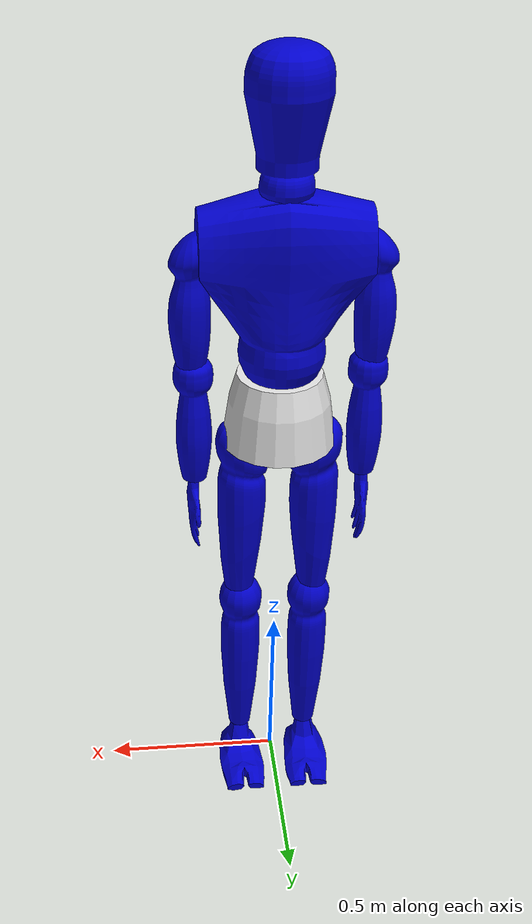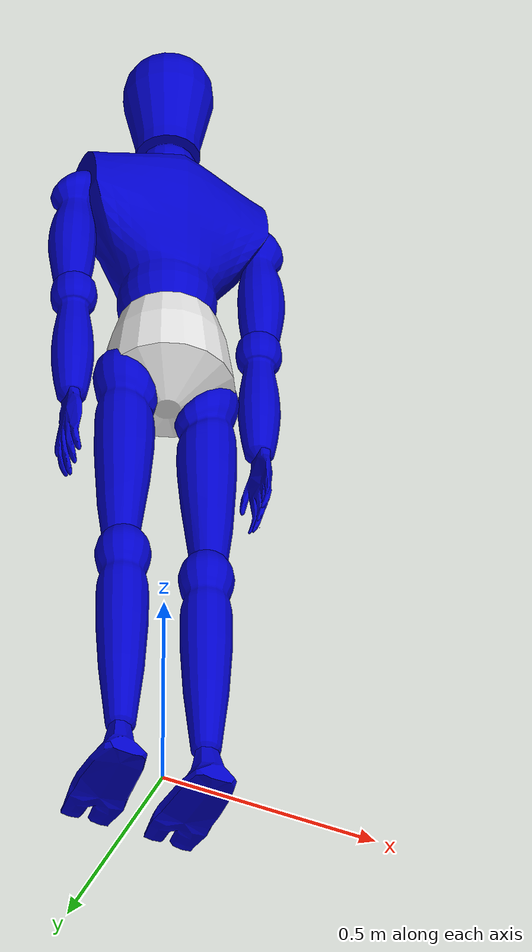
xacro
<?xml version="1.0"?>
<robot xmlns:sensor="http://playerstage.sourceforge.net/gazebo/xmlschema/#sensor"
       xmlns:controller="http://playerstage.sourceforge.net/gazebo/xmlschema/#controller"
       xmlns:interface="http://playerstage.sourceforge.net/gazebo/xmlschema/#interface"
       xmlns:xacro="http://playerstage.sourceforge.net/gazebo/xmlschema/#interface"
       name="human_gait2" >

  <material name="Blue">
    <color rgba="0.0 0.0 0.8 1.0"/>
  </material>
  <material name="Green">
    <color rgba="0.0 0.8 0.0 1.0"/>
  </material>
  <material name="Grey">
    <color rgba="0.7 0.7 0.7 1.0"/>
  </material>
  <material name="Grey2">
    <color rgba="0.9 0.9 0.9 1.0"/>
  </material>
  <material name="Red">
    <color rgba="0.8 0.0 0.0 1.0"/>
  </material>
  <material name="White">
    <color rgba="1.0 1.0 1.0 1.0"/>
  </material>
  <material name="Black">
    <color rgba="0.1 0.1 0.1 1.0"/>
  </material>
  <material name="LightGrey">
    <color rgba="0.6 0.6 0.6 1.0"/>
  </material>

  <link name="root_link"/>
  <link name="base_prismatic_dummy1">
    <visual>
      <origin rpy="0 0 0" xyz="0 0 0"/>
      <geometry>
        <box size="0.001 0.001 0.001"/>
      </geometry>
      <material name="Blue"/>
    </visual>
  </link>
  <link name="base_prismatic_dummy2">
    <visual>
      <origin rpy="0 0 0" xyz="0 0 0"/>
      <geometry>
        <box size="0.001 0.001 0.001"/>
      </geometry>
      <material name="Blue"/>
    </visual>
  </link>
  <link name="base_prismatic_dummy3">
    <visual>
      <origin rpy="0 0 0" xyz="0 0 0"/>
      <geometry>
        <box size="0.001 0.001 0.001"/>
      </geometry>
      <material name="Blue"/>
    </visual>
  </link>
  <joint name="base_prismatic_joint_x" type="prismatic">
    <axis xyz="1 0 0"/>
    <limit effort="10000" lower="-25.0" upper="25.0" velocity="0.6"/>
    <safety_controller k_position="100" k_velocity="2000000" soft_lower_limit="-24.9" soft_upper_limit="24.9"/>
    <calibration falling="0.00536"/>
    <dynamics damping="20000.0"/>
    <origin rpy="0 0 0" xyz="0 0 1.12"/>
    <parent link="root_link"/>
    <child link="base_prismatic_dummy1"/>
  </joint>
  <joint name="base_prismatic_joint_y" type="prismatic">
    <axis xyz="0 1 0"/>
    <limit effort="10000" lower="-25.0" upper="25.0" velocity="0.6"/>
    <safety_controller k_position="100" k_velocity="2000000" soft_lower_limit="-24.9" soft_upper_limit="24.9"/>
    <calibration falling="0.00536"/>
    <dynamics damping="20000.0"/>
    <origin rpy="0 0 0" xyz="0 0 0"/>
    <parent link="base_prismatic_dummy1"/>
    <child link="base_prismatic_dummy2"/>
  </joint>
  <joint name="base_prismatic_joint_z" type="prismatic">
    <axis xyz="0 0 1"/>
    <limit effort="10000" lower="-0.5" upper="0.6" velocity="0.6"/>
    <safety_controller k_position="100" k_velocity="2000000" soft_lower_limit="-0.5" soft_upper_limit="0.6"/>
    <calibration falling="0.00536"/>
    <dynamics damping="20000.0"/>
    <origin rpy="0 0 0" xyz="0 0 0"/>
    <parent link="base_prismatic_dummy2"/>
    <child link="base_prismatic_dummy3"/>
  </joint>
  <joint name="base_revolute_joint_z" type="continuous">
    <axis xyz="0 0 1"/>
    <origin rpy="0 0 0" xyz="0 0 0"/>
    <parent link="base_prismatic_dummy3"/>
    <child link="pelvis_link"/>
  </joint>

  <link name="pelvis_link">
    <visual>
      <origin rpy="0 0 0" xyz="0 0 0"/>
      <geometry>
        <mesh filename="package://human_description/meshes/pelvis.dae"/>
      </geometry>
      <material name="Grey2"/>
    </visual>
    <collision>
      <origin rpy="0 0 0" xyz="0 0 0"/>
      <geometry>
        <mesh filename="package://human_description/meshes/pelvis.dae"/>
      </geometry>
    </collision>
    <inertial>
      <mass value="24.9873014159"/>
      <inertia ixx="0.219399825" ixy="0.000000009184695" ixz="0.000000062599005" iyy="0.21939959375" iyz="-0.000000006475555" izz="0.22992248625"/>
      <origin xyz="0.00297477 -0.00000001 0.0983925"/>
    </inertial>
  </link>

  <joint name="torso_z_joint" type="revolute">
    <axis xyz="0 0 1"/>
    <limit effort="15" lower="-0.7" upper="0.7" velocity="5"/>
    <origin rpy="0 0 0" xyz="0 0 0.26"/>
    <parent link="pelvis_link"/>
    <child link="torso_z_link"/>
  </joint>
  <joint name="torso_y_joint" type="revolute">
    <axis xyz="0 1 0"/>
    <limit effort="15" lower="-0.3" upper="0.3" velocity="5"/>
    <origin rpy="0 0 0" xyz="0 0 0"/>
    <parent link="torso_z_link"/>
    <child link="torso_y_link"/>
  </joint>
  <joint name="torso_x_joint" type="revolute">
    <axis xyz="1 0 0"/>
    <limit effort="15" lower="-1.0" upper="0" velocity="5"/>
    <origin rpy="0 0 0" xyz="0 0 0"/>
    <parent link="torso_y_link"/>
    <child link="torso_x_link"/>
  </joint>

  <link name="torso_z_link"/>
  <link name="torso_y_link"/>
  <link name="torso_x_link">
    <visual>
      <origin rpy="0 0 0" xyz="0 0 0"/>
      <geometry>
        <mesh filename="package://human_description/meshes/torso.dae"/>
      </geometry>
      <material name="Blue"/>
    </visual>
    <collision>
      <origin rpy="0 0 0" xyz="0 0 0"/>
      <geometry>
        <mesh filename="package://human_description/meshes/torso.dae"/>
      </geometry>
    </collision>
    <inertial>
      <mass value="54.1902903318"/>
      <inertia ixx="1.0895931125" ixy="0.000001152997515" ixz="-0.000000460619845" iyy="1.4490895525" iyz="0.000000968452985" izz="0.679463005"/>
      <origin xyz="0.00000036 -0.00000025 0.22608234"/>
    </inertial>
  </link>

  <joint name="head_z_joint" type="revolute">
    <axis xyz="0 0 1"/>
    <limit effort="15" lower="-1.2" upper="1.2" velocity="5"/>
    <origin rpy="0 0 0" xyz="0 0 0.45"/>
    <parent link="torso_x_link"/>
    <child link="head_z_link"/>
  </joint>
  <joint name="head_y_joint" type="revolute">
    <axis xyz="0 1 0"/>
    <limit effort="15" lower="-0.8" upper="0.8" velocity="5"/>
    <origin rpy="0 0 0" xyz="0 0 0"/>
    <parent link="head_z_link"/>
    <child link="head_y_link"/>
  </joint>
  <joint name="head_x_joint" type="revolute">
    <axis xyz="1 0 0"/>
    <limit effort="15" lower="-1.57" upper="0.3" velocity="5"/>
    <origin rpy="0 0 0" xyz="0 0 0"/>
    <parent link="head_y_link"/>
    <child link="head_x_link"/>
  </joint>

  <link name="head_z_link"/>
  <link name="head_y_link"/>
  <link name="head_x_link">
    <visual>
      <origin rpy="0 0 0" xyz="0 0 0"/>
      <geometry>
        <mesh filename="package://human_description/meshes/head.dae"/>
      </geometry>
      <material name="Blue"/>
    </visual>
    <collision>
      <origin rpy="0 0 0" xyz="0 0 0"/>
      <geometry>
        <mesh filename="package://human_description/meshes/head.dae"/>
      </geometry>
    </collision>
    <inertial>
      <mass value="16.0164526852"/>
      <inertia ixx="0.194835825625" ixy="-0.00000000913641" ixz="0.00000000531468" iyy="0.194835733125" iyz="-0.000000020301345" izz="0.06426014890625"/>
      <origin xyz="-0.00113475 0.00000001 0.18566523"/>
    </inertial>
  </link>

  <joint name="head_endeffector_joint" type="revolute">
    <axis xyz="0 0 1"/>
    <limit effort="15" lower="-0.001" upper="0.001" velocity="5"/>
    <origin rpy="0 0 0" xyz="0 0 0.3"/>
    <parent link="head_x_link"/>
    <child link="head_endeffector_link"/>
  </joint>

  <link name="head_endeffector_link">
    <visual>
      <origin rpy="0 0 0" xyz="0 0 0"/>
      <geometry>
        <box size="0.001 0.001 0.001"/>
      </geometry>
      <material name="Blue"/>
    </visual>
    <collision>
      <origin rpy="0 0 0" xyz="0 0 0"/>
      <geometry>
        <box size="0.001 0.001 0.001"/>
      </geometry>
    </collision>
  </link>

  <joint name="upper_left_leg_z_joint" type="revolute">
    <axis xyz="0 0 1"/>
    <limit effort="15" lower="-0.1" upper="1.57" velocity="5"/>
    <origin rpy="0 0 0" xyz="-0.1 0 0"/>
    <parent link="pelvis_link"/>
    <child link="upper_left_leg_z_link"/>
  </joint>
  <joint name="upper_left_leg_y_joint" type="revolute">
    <axis xyz="0 1 0"/>
    <limit effort="15" lower="-0.1" upper="1.57" velocity="5"/>
    <origin rpy="0 0 0" xyz="0 0 0"/>
    <parent link="upper_left_leg_z_link"/>
    <child link="upper_left_leg_y_link"/>
  </joint>
  <joint name="upper_left_leg_x_joint" type="revolute">
    <axis xyz="1 0 0"/>
    <limit effort="15" lower="-1.2" upper="1.57" velocity="5"/>
    <origin rpy="0 0 0" xyz="0 0 0"/>
    <parent link="upper_left_leg_y_link"/>
    <child link="upper_left_leg_x_link"/>
  </joint>

  <link name="upper_left_leg_z_link"/>
  <link name="upper_left_leg_y_link"/>
  <link name="upper_left_leg_x_link">
    <visual>
      <origin rpy="0 0 0" xyz="0 0 0"/>
      <geometry>
        <mesh filename="package://human_description/meshes/upperLeftLeg.dae"/>
      </geometry>
      <material name="Blue"/>
    </visual>
    <collision>
      <origin rpy="0 0 0" xyz="0 0 0"/>
      <geometry>
        <mesh filename="package://human_description/meshes/upperLeftLeg.dae"/>
      </geometry>
    </collision>
    <inertial>
      <mass value="11.28066677275"/>
      <inertia ixx="0.258606759375" ixy="0.000002463301455" ixz="0.00032211891975" iyy="0.258311314375" iyz="-0.000065609605275" izz="0.021073428046875"/>
      <origin xyz="-0.00364974 -0.00003172 -0.19576731"/>
    </inertial>
  </link>

  <joint name="lower_left_leg_joint" type="revolute">
    <axis xyz="1 0 0"/>
    <limit effort="15" lower="-2.4" upper="0" velocity="5"/>
    <origin rpy="0 0 0" xyz="0 0 -0.5"/>
    <parent link="upper_left_leg_x_link"/>
    <child link="lower_left_leg_link"/>
  </joint>

  <link name="lower_left_leg_link">
    <visual>
      <origin rpy="0 0 0" xyz="0 0 0"/>
      <geometry>
        <mesh filename="package://human_description/meshes/lowerLeftLeg.dae"/>
      </geometry>
      <material name="Blue"/>
    </visual>
    <collision>
      <origin rpy="0 0 0" xyz="0 0 0"/>
      <geometry>
        <mesh filename="package://human_description/meshes/lowerLeftLeg.dae"/>
      </geometry>
    </collision>
    <inertial>
      <mass value="8.394054321"/>
      <inertia ixx="0.1879741409375" ixy="0.000000001719205" ixz="-0.00000000509231" iyy="0.1879741525" iyz="-0.00000001780773" izz="0.01166299402353"/>
      <origin xyz="0.00020124 -0.00029422 -0.20195734"/>
    </inertial>
  </link>

  <joint name="left_foot_x_joint" type="revolute">
    <axis xyz="1 0 0"/>
    <limit effort="15" lower="-1.57" upper="1.57" velocity="5"/>
    <origin rpy="0 0 0" xyz="0 0 -0.52"/>
    <parent link="lower_left_leg_link"/>
    <child link="left_foot_x_link"/>
  </joint>
  <joint name="left_foot_y_joint" type="revolute">
    <axis xyz="0 1 0"/>
    <limit effort="15" lower="-1.57" upper="1.57" velocity="5"/>
    <origin rpy="0 0 0" xyz="0 0 0"/>
    <parent link="left_foot_x_link"/>
    <child link="left_foot_y_link"/>
  </joint>
  <joint name="left_foot_z_joint" type="revolute">
    <axis xyz="0 0 1"/>
    <limit effort="15" lower="0" upper="0" velocity="5"/>
    <origin rpy="0 0 0" xyz="0 0 0"/>
    <parent link="left_foot_y_link"/>
    <child link="left_foot_z_link"/>
  </joint>

  <link name="left_foot_x_link"/>
  <link name="left_foot_y_link"/>
  <link name="left_foot_z_link">
    <visual>
      <origin rpy="0 0 0" xyz="0 0 0"/>
      <geometry>
        <mesh filename="package://human_description/meshes/leftFoot.dae"/>
      </geometry>
      <material name="Blue"/>
    </visual>
    <collision>
      <origin rpy="0 0 0" xyz="0 0 0"/>
      <geometry>
        <mesh filename="package://human_description/meshes/leftFoot.dae"/>
      </geometry>
    </collision>
    <inertial>
      <mass value="2.24629475115"/>
      <inertia ixx="0.00997119431636" ixy="-0.00032381616821" ixz="0.00003556416949" iyy="0.00325251065432" iyz="0.00137797584221" izz="0.01040399675772"/>
      <origin xyz="-0.00160579 0.04884521 -0.0783361"/>
    </inertial>
  </link>

  <joint name="left_foot_endeffector_joint" type="revolute">
    <axis xyz="0 0 1"/>
    <limit effort="15" lower="0" upper="0" velocity="5"/>
    <origin rpy="0 0 0" xyz="0 0 -0.1"/>
    <parent link="left_foot_z_link"/>
    <child link="left_foot_endeffector_link"/>
  </joint>

  <link name="left_foot_endeffector_link">
    <visual>
      <origin rpy="0 0 0" xyz="0 0 0"/>
      <geometry>
        <box size="0.001 0.001 0.001"/>
      </geometry>
      <material name="Blue"/>
    </visual>
  </link>

  <joint name="upper_right_leg_z_joint" type="revolute">
    <axis xyz="0 0 1"/>
    <limit effort="15" lower="-1.57" upper="0.1" velocity="5"/>
    <origin rpy="0 0 0" xyz="0.1 0 0"/>
    <parent link="pelvis_link"/>
    <child link="upper_right_leg_z_link"/>
  </joint>
  <joint name="upper_right_leg_y_joint" type="revolute">
    <axis xyz="0 1 0"/>
    <limit effort="15" lower="-1.57" upper="0.1" velocity="5"/>
    <origin rpy="0 0 0" xyz="0 0 0"/>
    <parent link="upper_right_leg_z_link"/>
    <child link="upper_right_leg_y_link"/>
  </joint>
  <joint name="upper_right_leg_x_joint" type="revolute">
    <axis xyz="1 0 0"/>
    <limit effort="15" lower="-1.2" upper="1.57" velocity="5"/>
    <origin rpy="0 0 0" xyz="0 0 0"/>
    <parent link="upper_right_leg_y_link"/>
    <child link="upper_right_leg_x_link"/>
  </joint>

  <link name="upper_right_leg_z_link"/>
  <link name="upper_right_leg_y_link"/>
  <link name="upper_right_leg_x_link">
    <visual>
      <origin rpy="0 0 0" xyz="0 0 0"/>
      <geometry>
        <mesh filename="package://human_description/meshes/upperRightLeg.dae"/>
      </geometry>
      <material name="Blue"/>
    </visual>
    <collision>
      <origin rpy="0 0 0" xyz="0 0 0"/>
      <geometry>
        <mesh filename="package://human_description/meshes/upperRightLeg.dae"/>
      </geometry>
    </collision>
    <inertial>
      <mass value="11.28066677275"/>
      <inertia ixx="0.258606759375" ixy="-0.000002463410605" ixz="-0.000322118806715" iyy="0.258311360625" iyz="-0.000065609865015" izz="0.021073428046875"/>
      <origin xyz="0.00364974 -0.00003172 -0.19576731"/>
    </inertial>
  </link>

  <joint name="lower_right_leg_joint" type="revolute">
    <axis xyz="1 0 0"/>
    <limit effort="15" lower="-2.4" upper="0" velocity="5"/>
    <origin rpy="0 0 0" xyz="0 0 -0.5"/>
    <parent link="upper_right_leg_x_link"/>
    <child link="lower_right_leg_link"/>
  </joint>

  <link name="lower_right_leg_link">
    <visual>
      <origin rpy="0 0 0" xyz="0 0 0"/>
      <geometry>
        <mesh filename="package://human_description/meshes/lowerRightLeg.dae"/>
      </geometry>
      <material name="Blue"/>
    </visual>
    <collision>
      <origin rpy="0 0 0" xyz="0 0 0"/>
      <geometry>
        <mesh filename="package://human_description/meshes/lowerRightLeg.dae"/>
      </geometry>
    </collision>
    <inertial>
      <mass value="8.394054321"/>
      <inertia ixx="0.1879741409375" ixy="0.000000001719205" ixz="-0.00000000509231" iyy="0.1879741525" iyz="-0.00000001780773" izz="0.01166299402353"/>
      <origin xyz="0.00020124 -0.00029422 -0.20195734"/>
    </inertial>
  </link>

  <joint name="right_foot_x_joint" type="revolute">
    <axis xyz="1 0 0"/>
    <limit effort="15" lower="-1.57" upper="1.57" velocity="5"/>
    <origin rpy="0 0 0" xyz="0 0 -0.52"/>
    <parent link="lower_right_leg_link"/>
    <child link="right_foot_x_link"/>
  </joint>
  <joint name="right_foot_y_joint" type="revolute">
    <axis xyz="0 1 0"/>
    <limit effort="15" lower="-1.57" upper="1.57" velocity="5"/>
    <origin rpy="0 0 0" xyz="0 0 0"/>
    <parent link="right_foot_x_link"/>
    <child link="right_foot_y_link"/>
  </joint>
  <joint name="right_foot_z_joint" type="revolute">
    <axis xyz="0 0 1"/>
    <limit effort="15" lower="0" upper="0" velocity="5"/>
    <origin rpy="0 0 0" xyz="0 0 0"/>
    <parent link="right_foot_y_link"/>
    <child link="right_foot_z_link"/>
  </joint>

  <link name="right_foot_x_link"/>
  <link name="right_foot_y_link"/>
  <link name="right_foot_z_link">
    <visual>
      <origin rpy="0 0 0" xyz="0 0 0"/>
      <geometry>
        <mesh filename="package://human_description/meshes/rightFoot.dae"/>
      </geometry>
      <material name="Blue"/>
    </visual>
    <collision>
      <origin rpy="0 0 0" xyz="0 0 0"/>
      <geometry>
        <mesh filename="package://human_description/meshes/rightFoot.dae"/>
      </geometry>
    </collision>
    <inertial>
      <mass value="2.24629475115"/>
      <inertia ixx="0.00997119287114" ixy="0.00032381614564" ixz="-0.0000355639042" iyy="0.003252511015625" iyz="0.00137797638426" izz="0.01040399675772"/>
      <origin xyz="0.00160579 0.04884521 -0.0783361"/>
    </inertial>
  </link>

  <joint name="right_foot_endeffector_joint" type="revolute">
    <axis xyz="0 0 1"/>
    <limit effort="15" lower="0" upper="0" velocity="5"/>
    <origin rpy="0 0 0" xyz="0 0 -0.1"/>
    <parent link="right_foot_z_link"/>
    <child link="right_foot_endeffector_link"/>
  </joint>

  <link name="right_foot_endeffector_link">
    <visual>
      <origin rpy="0 0 0" xyz="0 0 0"/>
      <geometry>
        <box size="0.001 0.001 0.001"/>
      </geometry>
      <material name="Blue"/>
    </visual>
  </link>

  <joint name="upper_left_arm_z_joint" type="revolute">
    <axis xyz="0 0 1"/>
    <limit effort="15" lower="-0.5" upper="0.5" velocity="5"/>
    <origin rpy="0 0 0" xyz="-0.23 0 0.33"/>
    <parent link="torso_x_link"/>
    <child link="upper_left_arm_z_link"/>
  </joint>
  <joint name="upper_left_arm_y_joint" type="revolute">
    <axis xyz="0 1 0"/>
    <limit effort="15" lower="0.0" upper="3.14" velocity="5"/>
    <origin rpy="0 0 0" xyz="0 0 0"/>
    <parent link="upper_left_arm_z_link"/>
    <child link="upper_left_arm_y_link"/>
  </joint>
  <joint name="upper_left_arm_x_joint" type="revolute">
    <axis xyz="1 0 0"/>
    <limit effort="15" lower="-1.0" upper="3.14" velocity="5"/>
    <origin rpy="0 0 0" xyz="0 0 0"/>
    <parent link="upper_left_arm_y_link"/>
    <child link="upper_left_arm_x_link"/>
  </joint>

  <link name="upper_left_arm_z_link"/>
  <link name="upper_left_arm_y_link"/>
  <link name="upper_left_arm_x_link">
    <visual>
      <origin rpy="0 0 0" xyz="0 0 0"/>
      <geometry>
        <mesh filename="package://human_description/meshes/upperLeftArm.dae"/>
      </geometry>
      <material name="Blue"/>
    </visual>
    <collision>
      <origin rpy="0 0 0" xyz="0 0 0"/>
      <geometry>
        <mesh filename="package://human_description/meshes/upperLeftArm.dae"/>
      </geometry>
    </collision>
    <inertial>
      <mass value="5.0428574576"/>
      <inertia ixx="0.05868383265625" ixy="-0.0000000925777" ixz="-0.00160419461921" iyy="0.05870381265625" iyz="-0.000002301658445" izz="0.006071859706985"/>
      <origin xyz="-0.00338773 -0.00000063 -0.17172602"/>
    </inertial>
  </link>

  <joint name="lower_left_arm_joint" type="revolute">
    <axis xyz="1 0 0"/>
    <limit effort="15" lower="0" upper="3.14" velocity="5"/>
    <origin rpy="0 0 0" xyz="0 0 -0.35"/>
    <parent link="upper_left_arm_x_link"/>
    <child link="lower_left_arm_link"/>
  </joint>

  <link name="lower_left_arm_link">
    <visual>
      <origin rpy="0 0 0" xyz="0 0 0"/>
      <geometry>
        <mesh filename="package://human_description/meshes/lowerLeftArm.dae"/>
      </geometry>
      <material name="Blue"/>
    </visual>
    <collision>
      <origin rpy="0 0 0" xyz="0 0 0"/>
      <geometry>
        <mesh filename="package://human_description/meshes/lowerLeftArm.dae"/>
      </geometry>
    </collision>
    <inertial>
      <mass value="4.1174112191"/>
      <inertia ixx="0.046870596953125" ixy="-0.000000000013135" ixz="0.00000000291116" iyy="0.0468705940625" iyz="-0.00000000721685" izz="0.00412573450193"/>
      <origin xyz="0.00022047 0.00000002 -0.14231966"/>
    </inertial>
  </link>

  <joint name="left_hand_z_joint" type="revolute">
    <axis xyz="0 0 1"/>
    <limit effort="15" lower="-1.0" upper="1.0" velocity="5"/>
    <origin rpy="0 0 0" xyz="0 0 -0.35"/>
    <parent link="lower_left_arm_link"/>
    <child link="left_hand_z_link"/>
  </joint>
  <joint name="left_hand_y_joint" type="revolute">
    <axis xyz="0 1 0"/>
    <limit effort="15" lower="-1.3" upper="1.5" velocity="5"/>
    <origin rpy="0 0 0" xyz="0 0 0"/>
    <parent link="left_hand_z_link"/>
    <child link="left_hand_y_link"/>
  </joint>
  <joint name="left_hand_x_joint" type="revolute">
    <axis xyz="1 0 0"/>
    <limit effort="15" lower="-0.5" upper="1.4" velocity="5"/>
    <origin rpy="0 0 0" xyz="0 0 0"/>
    <parent link="left_hand_y_link"/>
    <child link="left_hand_x_link"/>
  </joint>

  <link name="left_hand_z_link"/>
  <link name="left_hand_y_link"/>
  <link name="left_hand_x_link">
    <visual>
      <origin rpy="0 0 0" xyz="0 0 0"/>
      <geometry>
        <mesh filename="package://human_description/meshes/leftHand.dae"/>
      </geometry>
      <material name="Blue"/>
    </visual>
    <collision>
      <origin rpy="0 0 0" xyz="0 0 0"/>
      <geometry>
        <mesh filename="package://human_description/meshes/leftHand.dae"/>
      </geometry>
    </collision>
    <inertial>
      <mass value="0.5669499677"/>
      <inertia ixx="0.00201160057137" ixy="-0.000016142435665" ixz="-0.00000510135428" iyy="0.00161538206057" iyz="0.00004737239241" izz="0.00044905660648"/>
      <origin xyz="-0.00417106 0.0042704 -0.05959476"/>
    </inertial>
  </link>

  <joint name="left_hand_endeffector_joint" type="revolute">
    <axis xyz="0 0 1"/>
    <limit effort="15" lower="-0.001" upper="0.001" velocity="5"/>
    <origin rpy="0 0 0" xyz="0 0 -0.2"/>
    <parent link="left_hand_x_link"/>
    <child link="left_hand_endeffector_link"/>
  </joint>

  <link name="left_hand_endeffector_link">
    <visual>
      <origin rpy="0 0 0" xyz="0 0 0"/>
      <geometry>
        <box size="0.001 0.001 0.001"/>
      </geometry>
      <material name="Blue"/>
    </visual>
    <collision>
      <origin rpy="0 0 0" xyz="0 0 0"/>
      <geometry>
        <box size="0.001 0.001 0.001"/>
      </geometry>
    </collision>
  </link>

  <joint name="upper_right_arm_z_joint" type="revolute">
    <axis xyz="0 0 1"/>
    <limit effort="15" lower="-0.5" upper="0.5" velocity="5"/>
    <origin rpy="0 0 0" xyz="0.23 0 0.33"/>
    <parent link="torso_x_link"/>
    <child link="upper_right_arm_z_link"/>
  </joint>
  <joint name="upper_right_arm_y_joint" type="revolute">
    <axis xyz="0 1 0"/>
    <limit effort="15" lower="-3.14" upper="0.0" velocity="5"/>
    <origin rpy="0 0 0" xyz="0 0 0"/>
    <parent link="upper_right_arm_z_link"/>
    <child link="upper_right_arm_y_link"/>
  </joint>
  <joint name="upper_right_arm_x_joint" type="revolute">
    <axis xyz="1 0 0"/>
    <limit effort="15" lower="-1.0" upper="3.14" velocity="5"/>
    <origin rpy="0 0 0" xyz="0 0 0"/>
    <parent link="upper_right_arm_y_link"/>
    <child link="upper_right_arm_x_link"/>
  </joint>

  <link name="upper_right_arm_z_link"/>
  <link name="upper_right_arm_y_link"/>
  <link name="upper_right_arm_x_link">
    <visual>
      <origin rpy="0 0 0" xyz="0 0 0"/>
      <geometry>
        <mesh filename="package://human_description/meshes/upperRightArm.dae"/>
      </geometry>
      <material name="Blue"/>
    </visual>
    <collision>
      <origin rpy="0 0 0" xyz="0 0 0"/>
      <geometry>
        <mesh filename="package://human_description/meshes/upperRightArm.dae"/>
      </geometry>
    </collision>
    <inertial>
      <mass value="5.0428574576"/>
      <inertia ixx="0.05868383265625" ixy="0.00000009260175" ixz="0.00160419479977" iyy="0.05870381265625" iyz="-0.000002301500825" izz="0.006071859706985"/>
      <origin xyz="0.00338773 -0.00000063 -0.17172602"/>
    </inertial>
  </link>

  <joint name="lower_right_arm_joint" type="revolute">
    <axis xyz="1 0 0"/>
    <limit effort="15" lower="0" upper="3.14" velocity="5"/>
    <origin rpy="0 0 0" xyz="0 0 -0.35"/>
    <parent link="upper_right_arm_x_link"/>
    <child link="lower_right_arm_link"/>
  </joint>

  <link name="lower_right_arm_link">
    <visual>
      <origin rpy="0 0 0" xyz="0 0 0"/>
      <geometry>
        <mesh filename="package://human_description/meshes/lowerRightArm.dae"/>
      </geometry>
      <material name="Blue"/>
    </visual>
    <collision>
      <origin rpy="0 0 0" xyz="0 0 0"/>
      <geometry>
        <mesh filename="package://human_description/meshes/lowerRightArm.dae"/>
      </geometry>
    </collision>
    <inertial>
      <mass value="4.1174112191"/>
      <inertia ixx="0.046870596953125" ixy="-0.000000000013135" ixz="0.00000000291116" iyy="0.0468705940625" iyz="-0.00000000721685" izz="0.00412573450193"/>
      <origin xyz="0.00022047 0.00000002 -0.14231966"/>
    </inertial>
  </link>

  <joint name="right_hand_z_joint" type="revolute">
    <axis xyz="0 0 1"/>
    <limit effort="15" lower="-1.0" upper="1.0" velocity="5"/>
    <origin rpy="0 0 0" xyz="0 0 -0.35"/>
    <parent link="lower_right_arm_link"/>
    <child link="right_hand_z_link"/>
  </joint>
  <joint name="right_hand_y_joint" type="revolute">
    <axis xyz="0 1 0"/>
    <limit effort="15" lower="-1.5" upper="1.3" velocity="5"/>
    <origin rpy="0 0 0" xyz="0 0 0"/>
    <parent link="right_hand_z_link"/>
    <child link="right_hand_y_link"/>
  </joint>
  <joint name="right_hand_x_joint" type="revolute">
    <axis xyz="1 0 0"/>
    <limit effort="15" lower="-0.5" upper="1.4" velocity="5"/>
    <origin rpy="0 0 0" xyz="0 0 0"/>
    <parent link="right_hand_y_link"/>
    <child link="right_hand_x_link"/>
  </joint>

  <link name="right_hand_z_link"/>
  <link name="right_hand_y_link"/>
  <link name="right_hand_x_link">
    <visual>
      <origin rpy="0 0 0" xyz="0 0 0"/>
      <geometry>
        <mesh filename="package://human_description/meshes/rightHand.dae"/>
      </geometry>
      <material name="Blue"/>
    </visual>
    <collision>
      <origin rpy="0 0 0" xyz="0 0 0"/>
      <geometry>
        <mesh filename="package://human_description/meshes/rightHand.dae"/>
      </geometry>
    </collision>
    <inertial>
      <mass value="0.5669499677"/>
      <inertia ixx="0.00201160057137" ixy="0.000016142435665" ixz="0.00000510133208" iyy="0.00161538206057" iyz="0.00004737239241" izz="0.00044905660648"/>
      <origin xyz="0.00417106 0.0042704 -0.05959476"/>
    </inertial>
  </link>

  <joint name="right_hand_endeffector_joint" type="revolute">
    <axis xyz="0 0 1"/>
    <limit effort="15" lower="-0.001" upper="0.001" velocity="5"/>
    <origin rpy="0 0 0" xyz="0 0 -0.2"/>
    <parent link="right_hand_x_link"/>
    <child link="right_hand_endeffector_link"/>
  </joint>

  <link name="right_hand_endeffector_link">
    <visual>
      <origin rpy="0 0 0" xyz="0 0 0"/>
      <geometry>
        <box size="0.001 0.001 0.001"/>
      </geometry>
      <material name="Blue"/>
    </visual>
    <collision>
      <origin rpy="0 0 0" xyz="0 0 0"/>
      <geometry>
        <box size="0.001 0.001 0.001"/>
      </geometry>
    </collision>
  </link>

</robot>
